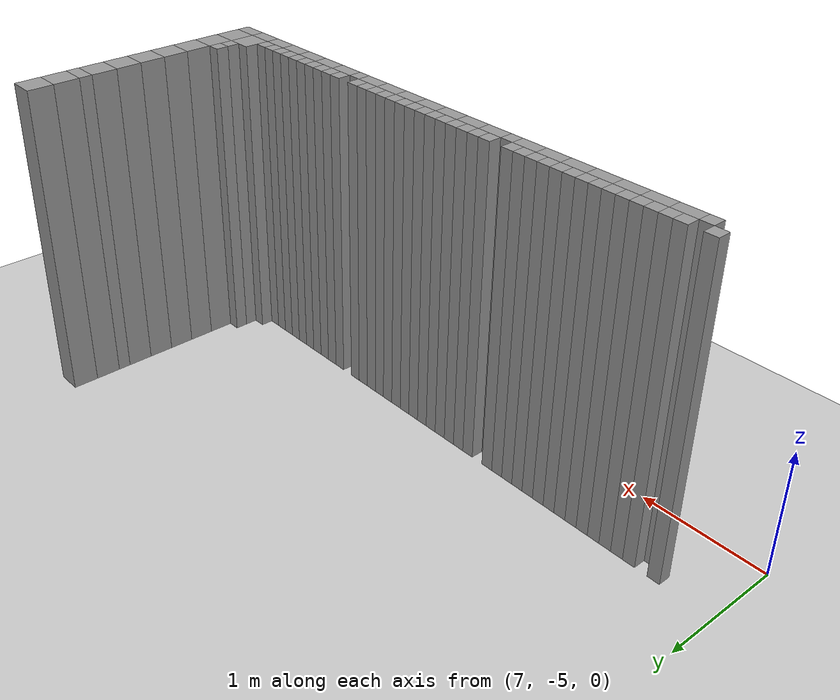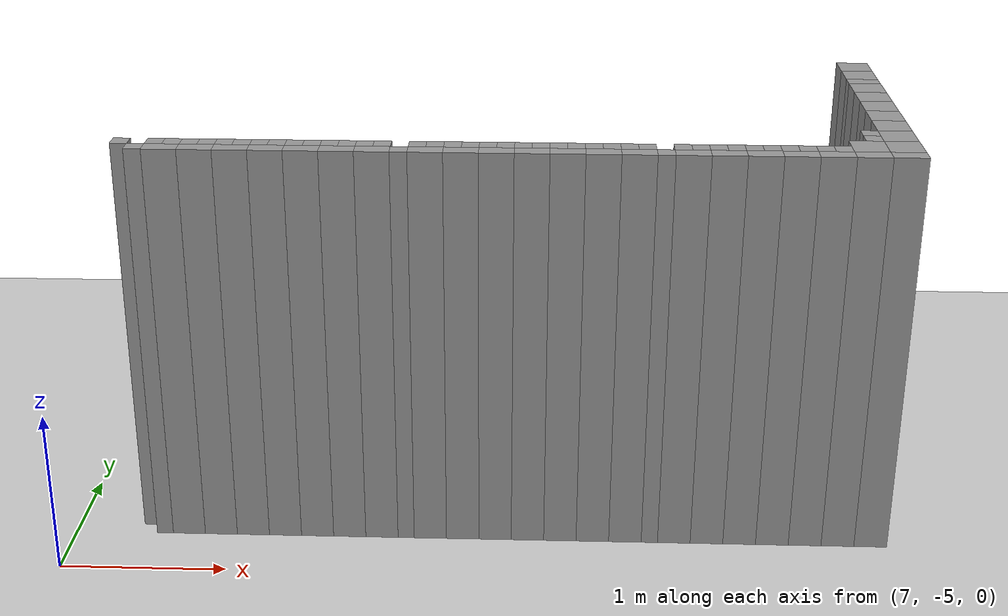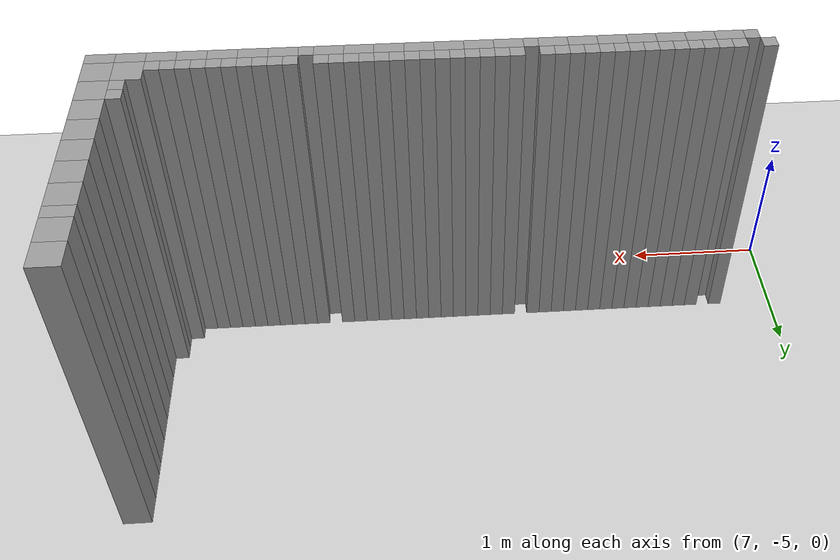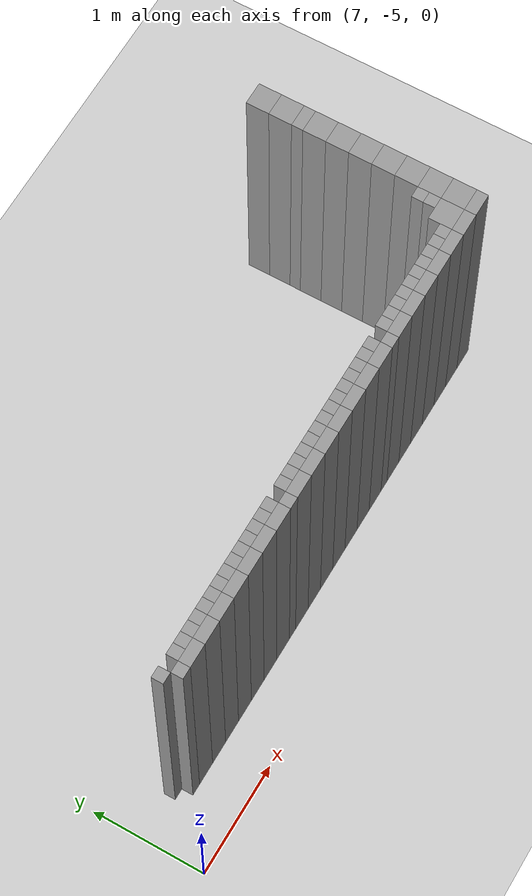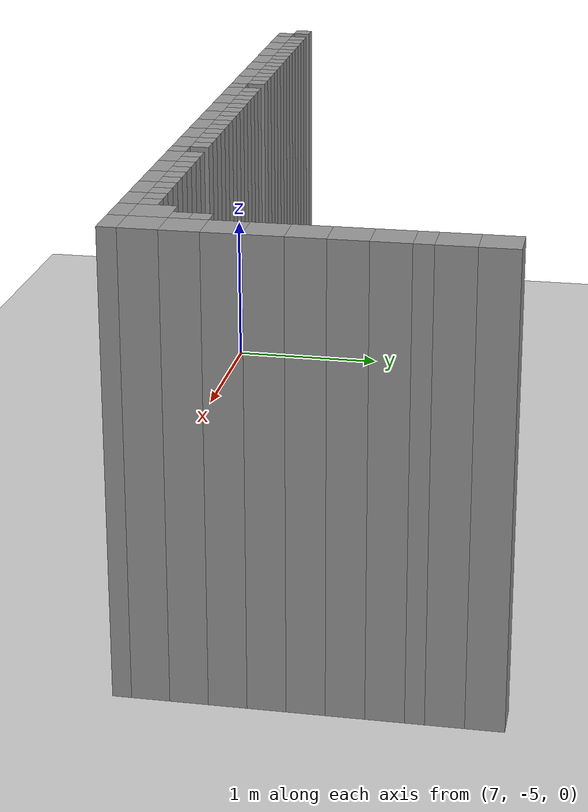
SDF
<sdf version="1.6">
 <world name="default">
  <include><uri>model://sun</uri></include>
  <include><uri>model://ground_plane</uri></include>
  <model name="stage_test">
   <static>1</static>
   <pose>-12 -12 0 0 0 0</pose>
   <link name="Wall_978">
    <pose>19.450000000000003 7.550000000000001 0 0 0 0</pose>
    <collision name="Wall_978_collision">
     <pose>0 0 1.25 0 0 0</pose>
     <geometry><box><size>0.09999999999999787 0.10000000000000053 2.5</size></box></geometry>
    </collision>
    <visual name="Wall_978_visual">
     <pose>0 0 1.25 0 0 0</pose>
     <geometry><box><size>0.09999999999999787 0.10000000000000053 2.5</size></box></geometry>
     <material>
      <script><uri>file://media/materials/scripts/gazebo.material</uri><name>Gazebo/Grey</name></script>
      <ambient>1 1 1 1</ambient>
     </material>
    </visual>
   </link>
   <link name="Wall_987">
    <pose>19.650000000000002 7.550000000000001 0 0 0 0</pose>
    <collision name="Wall_987_collision">
     <pose>0 0 1.25 0 0 0</pose>
     <geometry><box><size>0.10000000000000142 0.10000000000000053 2.5</size></box></geometry>
    </collision>
    <visual name="Wall_987_visual">
     <pose>0 0 1.25 0 0 0</pose>
     <geometry><box><size>0.10000000000000142 0.10000000000000053 2.5</size></box></geometry>
     <material>
      <script><uri>file://media/materials/scripts/gazebo.material</uri><name>Gazebo/Grey</name></script>
      <ambient>1 1 1 1</ambient>
     </material>
    </visual>
   </link>
   <link name="Wall_988">
    <pose>19.75 7.550000000000001 0 0 0 0</pose>
    <collision name="Wall_988_collision">
     <pose>0 0 1.25 0 0 0</pose>
     <geometry><box><size>0.09999999999999787 0.10000000000000053 2.5</size></box></geometry>
    </collision>
    <visual name="Wall_988_visual">
     <pose>0 0 1.25 0 0 0</pose>
     <geometry><box><size>0.09999999999999787 0.10000000000000053 2.5</size></box></geometry>
     <material>
      <script><uri>file://media/materials/scripts/gazebo.material</uri><name>Gazebo/Grey</name></script>
      <ambient>1 1 1 1</ambient>
     </material>
    </visual>
   </link>
   <link name="Wall_989">
    <pose>19.85 7.550000000000001 0 0 0 0</pose>
    <collision name="Wall_989_collision">
     <pose>0 0 1.25 0 0 0</pose>
     <geometry><box><size>0.10000000000000142 0.10000000000000053 2.5</size></box></geometry>
    </collision>
    <visual name="Wall_989_visual">
     <pose>0 0 1.25 0 0 0</pose>
     <geometry><box><size>0.10000000000000142 0.10000000000000053 2.5</size></box></geometry>
     <material>
      <script><uri>file://media/materials/scripts/gazebo.material</uri><name>Gazebo/Grey</name></script>
      <ambient>1 1 1 1</ambient>
     </material>
    </visual>
   </link>
   <link name="Wall_990">
    <pose>19.950000000000003 7.550000000000001 0 0 0 0</pose>
    <collision name="Wall_990_collision">
     <pose>0 0 1.25 0 0 0</pose>
     <geometry><box><size>0.09999999999999787 0.10000000000000053 2.5</size></box></geometry>
    </collision>
    <visual name="Wall_990_visual">
     <pose>0 0 1.25 0 0 0</pose>
     <geometry><box><size>0.09999999999999787 0.10000000000000053 2.5</size></box></geometry>
     <material>
      <script><uri>file://media/materials/scripts/gazebo.material</uri><name>Gazebo/Grey</name></script>
      <ambient>1 1 1 1</ambient>
     </material>
    </visual>
   </link>
   <link name="Wall_991">
    <pose>20.05 7.550000000000001 0 0 0 0</pose>
    <collision name="Wall_991_collision">
     <pose>0 0 1.25 0 0 0</pose>
     <geometry><box><size>0.10000000000000142 0.10000000000000053 2.5</size></box></geometry>
    </collision>
    <visual name="Wall_991_visual">
     <pose>0 0 1.25 0 0 0</pose>
     <geometry><box><size>0.10000000000000142 0.10000000000000053 2.5</size></box></geometry>
     <material>
      <script><uri>file://media/materials/scripts/gazebo.material</uri><name>Gazebo/Grey</name></script>
      <ambient>1 1 1 1</ambient>
     </material>
    </visual>
   </link>
   <link name="Wall_992">
    <pose>20.150000000000002 7.550000000000001 0 0 0 0</pose>
    <collision name="Wall_992_collision">
     <pose>0 0 1.25 0 0 0</pose>
     <geometry><box><size>0.10000000000000142 0.10000000000000053 2.5</size></box></geometry>
    </collision>
    <visual name="Wall_992_visual">
     <pose>0 0 1.25 0 0 0</pose>
     <geometry><box><size>0.10000000000000142 0.10000000000000053 2.5</size></box></geometry>
     <material>
      <script><uri>file://media/materials/scripts/gazebo.material</uri><name>Gazebo/Grey</name></script>
      <ambient>1 1 1 1</ambient>
     </material>
    </visual>
   </link>
   <link name="Wall_993">
    <pose>20.25 7.550000000000001 0 0 0 0</pose>
    <collision name="Wall_993_collision">
     <pose>0 0 1.25 0 0 0</pose>
     <geometry><box><size>0.09999999999999787 0.10000000000000053 2.5</size></box></geometry>
    </collision>
    <visual name="Wall_993_visual">
     <pose>0 0 1.25 0 0 0</pose>
     <geometry><box><size>0.09999999999999787 0.10000000000000053 2.5</size></box></geometry>
     <material>
      <script><uri>file://media/materials/scripts/gazebo.material</uri><name>Gazebo/Grey</name></script>
      <ambient>1 1 1 1</ambient>
     </material>
    </visual>
   </link>
   <link name="Wall_994">
    <pose>20.35 7.550000000000001 0 0 0 0</pose>
    <collision name="Wall_994_collision">
     <pose>0 0 1.25 0 0 0</pose>
     <geometry><box><size>0.10000000000000142 0.10000000000000053 2.5</size></box></geometry>
    </collision>
    <visual name="Wall_994_visual">
     <pose>0 0 1.25 0 0 0</pose>
     <geometry><box><size>0.10000000000000142 0.10000000000000053 2.5</size></box></geometry>
     <material>
      <script><uri>file://media/materials/scripts/gazebo.material</uri><name>Gazebo/Grey</name></script>
      <ambient>1 1 1 1</ambient>
     </material>
    </visual>
   </link>
   <link name="Wall_995">
    <pose>20.450000000000003 7.550000000000001 0 0 0 0</pose>
    <collision name="Wall_995_collision">
     <pose>0 0 1.25 0 0 0</pose>
     <geometry><box><size>0.09999999999999787 0.10000000000000053 2.5</size></box></geometry>
    </collision>
    <visual name="Wall_995_visual">
     <pose>0 0 1.25 0 0 0</pose>
     <geometry><box><size>0.09999999999999787 0.10000000000000053 2.5</size></box></geometry>
     <material>
      <script><uri>file://media/materials/scripts/gazebo.material</uri><name>Gazebo/Grey</name></script>
      <ambient>1 1 1 1</ambient>
     </material>
    </visual>
   </link>
   <link name="Wall_996">
    <pose>20.55 7.550000000000001 0 0 0 0</pose>
    <collision name="Wall_996_collision">
     <pose>0 0 1.25 0 0 0</pose>
     <geometry><box><size>0.10000000000000142 0.10000000000000053 2.5</size></box></geometry>
    </collision>
    <visual name="Wall_996_visual">
     <pose>0 0 1.25 0 0 0</pose>
     <geometry><box><size>0.10000000000000142 0.10000000000000053 2.5</size></box></geometry>
     <material>
      <script><uri>file://media/materials/scripts/gazebo.material</uri><name>Gazebo/Grey</name></script>
      <ambient>1 1 1 1</ambient>
     </material>
    </visual>
   </link>
   <link name="Wall_997">
    <pose>20.650000000000002 7.550000000000001 0 0 0 0</pose>
    <collision name="Wall_997_collision">
     <pose>0 0 1.25 0 0 0</pose>
     <geometry><box><size>0.10000000000000142 0.10000000000000053 2.5</size></box></geometry>
    </collision>
    <visual name="Wall_997_visual">
     <pose>0 0 1.25 0 0 0</pose>
     <geometry><box><size>0.10000000000000142 0.10000000000000053 2.5</size></box></geometry>
     <material>
      <script><uri>file://media/materials/scripts/gazebo.material</uri><name>Gazebo/Grey</name></script>
      <ambient>1 1 1 1</ambient>
     </material>
    </visual>
   </link>
   <link name="Wall_998">
    <pose>20.75 7.550000000000001 0 0 0 0</pose>
    <collision name="Wall_998_collision">
     <pose>0 0 1.25 0 0 0</pose>
     <geometry><box><size>0.09999999999999787 0.10000000000000053 2.5</size></box></geometry>
    </collision>
    <visual name="Wall_998_visual">
     <pose>0 0 1.25 0 0 0</pose>
     <geometry><box><size>0.09999999999999787 0.10000000000000053 2.5</size></box></geometry>
     <material>
      <script><uri>file://media/materials/scripts/gazebo.material</uri><name>Gazebo/Grey</name></script>
      <ambient>1 1 1 1</ambient>
     </material>
    </visual>
   </link>
   <link name="Wall_999">
    <pose>20.85 7.550000000000001 0 0 0 0</pose>
    <collision name="Wall_999_collision">
     <pose>0 0 1.25 0 0 0</pose>
     <geometry><box><size>0.10000000000000142 0.10000000000000053 2.5</size></box></geometry>
    </collision>
    <visual name="Wall_999_visual">
     <pose>0 0 1.25 0 0 0</pose>
     <geometry><box><size>0.10000000000000142 0.10000000000000053 2.5</size></box></geometry>
     <material>
      <script><uri>file://media/materials/scripts/gazebo.material</uri><name>Gazebo/Grey</name></script>
      <ambient>1 1 1 1</ambient>
     </material>
    </visual>
   </link>
   <link name="Wall_1000">
    <pose>20.950000000000003 7.550000000000001 0 0 0 0</pose>
    <collision name="Wall_1000_collision">
     <pose>0 0 1.25 0 0 0</pose>
     <geometry><box><size>0.09999999999999787 0.10000000000000053 2.5</size></box></geometry>
    </collision>
    <visual name="Wall_1000_visual">
     <pose>0 0 1.25 0 0 0</pose>
     <geometry><box><size>0.09999999999999787 0.10000000000000053 2.5</size></box></geometry>
     <material>
      <script><uri>file://media/materials/scripts/gazebo.material</uri><name>Gazebo/Grey</name></script>
      <ambient>1 1 1 1</ambient>
     </material>
    </visual>
   </link>
   <link name="Wall_1001">
    <pose>19.55 7.45 0 0 0 0</pose>
    <collision name="Wall_1001_collision">
     <pose>0 0 1.25 0 0 0</pose>
     <geometry><box><size>0.10000000000000142 0.09999999999999964 2.5</size></box></geometry>
    </collision>
    <visual name="Wall_1001_visual">
     <pose>0 0 1.25 0 0 0</pose>
     <geometry><box><size>0.10000000000000142 0.09999999999999964 2.5</size></box></geometry>
     <material>
      <script><uri>file://media/materials/scripts/gazebo.material</uri><name>Gazebo/Grey</name></script>
      <ambient>1 1 1 1</ambient>
     </material>
    </visual>
   </link>
   <link name="Wall_1002">
    <pose>19.700000000000003 7.45 0 0 0 0</pose>
    <collision name="Wall_1002_collision">
     <pose>0 0 1.25 0 0 0</pose>
     <geometry><box><size>0.1999999999999993 0.09999999999999964 2.5</size></box></geometry>
    </collision>
    <visual name="Wall_1002_visual">
     <pose>0 0 1.25 0 0 0</pose>
     <geometry><box><size>0.1999999999999993 0.09999999999999964 2.5</size></box></geometry>
     <material>
      <script><uri>file://media/materials/scripts/gazebo.material</uri><name>Gazebo/Grey</name></script>
      <ambient>1 1 1 1</ambient>
     </material>
    </visual>
   </link>
   <link name="Wall_1003">
    <pose>19.9 7.45 0 0 0 0</pose>
    <collision name="Wall_1003_collision">
     <pose>0 0 1.25 0 0 0</pose>
     <geometry><box><size>0.1999999999999993 0.09999999999999964 2.5</size></box></geometry>
    </collision>
    <visual name="Wall_1003_visual">
     <pose>0 0 1.25 0 0 0</pose>
     <geometry><box><size>0.1999999999999993 0.09999999999999964 2.5</size></box></geometry>
     <material>
      <script><uri>file://media/materials/scripts/gazebo.material</uri><name>Gazebo/Grey</name></script>
      <ambient>1 1 1 1</ambient>
     </material>
    </visual>
   </link>
   <link name="Wall_1004">
    <pose>20.1 7.45 0 0 0 0</pose>
    <collision name="Wall_1004_collision">
     <pose>0 0 1.25 0 0 0</pose>
     <geometry><box><size>0.20000000000000284 0.09999999999999964 2.5</size></box></geometry>
    </collision>
    <visual name="Wall_1004_visual">
     <pose>0 0 1.25 0 0 0</pose>
     <geometry><box><size>0.20000000000000284 0.09999999999999964 2.5</size></box></geometry>
     <material>
      <script><uri>file://media/materials/scripts/gazebo.material</uri><name>Gazebo/Grey</name></script>
      <ambient>1 1 1 1</ambient>
     </material>
    </visual>
   </link>
   <link name="Wall_1005">
    <pose>20.300000000000004 7.45 0 0 0 0</pose>
    <collision name="Wall_1005_collision">
     <pose>0 0 1.25 0 0 0</pose>
     <geometry><box><size>0.1999999999999993 0.09999999999999964 2.5</size></box></geometry>
    </collision>
    <visual name="Wall_1005_visual">
     <pose>0 0 1.25 0 0 0</pose>
     <geometry><box><size>0.1999999999999993 0.09999999999999964 2.5</size></box></geometry>
     <material>
      <script><uri>file://media/materials/scripts/gazebo.material</uri><name>Gazebo/Grey</name></script>
      <ambient>1 1 1 1</ambient>
     </material>
    </visual>
   </link>
   <link name="Wall_1006">
    <pose>20.5 7.45 0 0 0 0</pose>
    <collision name="Wall_1006_collision">
     <pose>0 0 1.25 0 0 0</pose>
     <geometry><box><size>0.1999999999999993 0.09999999999999964 2.5</size></box></geometry>
    </collision>
    <visual name="Wall_1006_visual">
     <pose>0 0 1.25 0 0 0</pose>
     <geometry><box><size>0.1999999999999993 0.09999999999999964 2.5</size></box></geometry>
     <material>
      <script><uri>file://media/materials/scripts/gazebo.material</uri><name>Gazebo/Grey</name></script>
      <ambient>1 1 1 1</ambient>
     </material>
    </visual>
   </link>
   <link name="Wall_1007">
    <pose>20.700000000000003 7.45 0 0 0 0</pose>
    <collision name="Wall_1007_collision">
     <pose>0 0 1.25 0 0 0</pose>
     <geometry><box><size>0.1999999999999993 0.09999999999999964 2.5</size></box></geometry>
    </collision>
    <visual name="Wall_1007_visual">
     <pose>0 0 1.25 0 0 0</pose>
     <geometry><box><size>0.1999999999999993 0.09999999999999964 2.5</size></box></geometry>
     <material>
      <script><uri>file://media/materials/scripts/gazebo.material</uri><name>Gazebo/Grey</name></script>
      <ambient>1 1 1 1</ambient>
     </material>
    </visual>
   </link>
   <link name="Wall_1008">
    <pose>20.9 7.45 0 0 0 0</pose>
    <collision name="Wall_1008_collision">
     <pose>0 0 1.25 0 0 0</pose>
     <geometry><box><size>0.1999999999999993 0.09999999999999964 2.5</size></box></geometry>
    </collision>
    <visual name="Wall_1008_visual">
     <pose>0 0 1.25 0 0 0</pose>
     <geometry><box><size>0.1999999999999993 0.09999999999999964 2.5</size></box></geometry>
     <material>
      <script><uri>file://media/materials/scripts/gazebo.material</uri><name>Gazebo/Grey</name></script>
      <ambient>1 1 1 1</ambient>
     </material>
    </visual>
   </link>
   <link name="Wall_1023">
    <pose>23.9 9.3 0 0 0 0</pose>
    <collision name="Wall_1023_collision">
     <pose>0 0 1.25 0 0 0</pose>
     <geometry><box><size>0.1999999999999993 0.1999999999999993 2.5</size></box></geometry>
    </collision>
    <visual name="Wall_1023_visual">
     <pose>0 0 1.25 0 0 0</pose>
     <geometry><box><size>0.1999999999999993 0.1999999999999993 2.5</size></box></geometry>
     <material>
      <script><uri>file://media/materials/scripts/gazebo.material</uri><name>Gazebo/Grey</name></script>
      <ambient>1 1 1 1</ambient>
     </material>
    </visual>
   </link>
   <link name="Wall_1024">
    <pose>23.9 9.100000000000001 0 0 0 0</pose>
    <collision name="Wall_1024_collision">
     <pose>0 0 1.25 0 0 0</pose>
     <geometry><box><size>0.1999999999999993 0.20000000000000107 2.5</size></box></geometry>
    </collision>
    <visual name="Wall_1024_visual">
     <pose>0 0 1.25 0 0 0</pose>
     <geometry><box><size>0.1999999999999993 0.20000000000000107 2.5</size></box></geometry>
     <material>
      <script><uri>file://media/materials/scripts/gazebo.material</uri><name>Gazebo/Grey</name></script>
      <ambient>1 1 1 1</ambient>
     </material>
    </visual>
   </link>
   <link name="Wall_1025">
    <pose>21.150000000000002 7.550000000000001 0 0 0 0</pose>
    <collision name="Wall_1025_collision">
     <pose>0 0 1.25 0 0 0</pose>
     <geometry><box><size>0.10000000000000142 0.10000000000000053 2.5</size></box></geometry>
    </collision>
    <visual name="Wall_1025_visual">
     <pose>0 0 1.25 0 0 0</pose>
     <geometry><box><size>0.10000000000000142 0.10000000000000053 2.5</size></box></geometry>
     <material>
      <script><uri>file://media/materials/scripts/gazebo.material</uri><name>Gazebo/Grey</name></script>
      <ambient>1 1 1 1</ambient>
     </material>
    </visual>
   </link>
   <link name="Wall_1026">
    <pose>21.25 7.550000000000001 0 0 0 0</pose>
    <collision name="Wall_1026_collision">
     <pose>0 0 1.25 0 0 0</pose>
     <geometry><box><size>0.09999999999999787 0.10000000000000053 2.5</size></box></geometry>
    </collision>
    <visual name="Wall_1026_visual">
     <pose>0 0 1.25 0 0 0</pose>
     <geometry><box><size>0.09999999999999787 0.10000000000000053 2.5</size></box></geometry>
     <material>
      <script><uri>file://media/materials/scripts/gazebo.material</uri><name>Gazebo/Grey</name></script>
      <ambient>1 1 1 1</ambient>
     </material>
    </visual>
   </link>
   <link name="Wall_1027">
    <pose>21.35 7.550000000000001 0 0 0 0</pose>
    <collision name="Wall_1027_collision">
     <pose>0 0 1.25 0 0 0</pose>
     <geometry><box><size>0.10000000000000142 0.10000000000000053 2.5</size></box></geometry>
    </collision>
    <visual name="Wall_1027_visual">
     <pose>0 0 1.25 0 0 0</pose>
     <geometry><box><size>0.10000000000000142 0.10000000000000053 2.5</size></box></geometry>
     <material>
      <script><uri>file://media/materials/scripts/gazebo.material</uri><name>Gazebo/Grey</name></script>
      <ambient>1 1 1 1</ambient>
     </material>
    </visual>
   </link>
   <link name="Wall_1028">
    <pose>21.450000000000003 7.550000000000001 0 0 0 0</pose>
    <collision name="Wall_1028_collision">
     <pose>0 0 1.25 0 0 0</pose>
     <geometry><box><size>0.09999999999999787 0.10000000000000053 2.5</size></box></geometry>
    </collision>
    <visual name="Wall_1028_visual">
     <pose>0 0 1.25 0 0 0</pose>
     <geometry><box><size>0.09999999999999787 0.10000000000000053 2.5</size></box></geometry>
     <material>
      <script><uri>file://media/materials/scripts/gazebo.material</uri><name>Gazebo/Grey</name></script>
      <ambient>1 1 1 1</ambient>
     </material>
    </visual>
   </link>
   <link name="Wall_1029">
    <pose>21.55 7.550000000000001 0 0 0 0</pose>
    <collision name="Wall_1029_collision">
     <pose>0 0 1.25 0 0 0</pose>
     <geometry><box><size>0.10000000000000142 0.10000000000000053 2.5</size></box></geometry>
    </collision>
    <visual name="Wall_1029_visual">
     <pose>0 0 1.25 0 0 0</pose>
     <geometry><box><size>0.10000000000000142 0.10000000000000053 2.5</size></box></geometry>
     <material>
      <script><uri>file://media/materials/scripts/gazebo.material</uri><name>Gazebo/Grey</name></script>
      <ambient>1 1 1 1</ambient>
     </material>
    </visual>
   </link>
   <link name="Wall_1030">
    <pose>21.65 7.550000000000001 0 0 0 0</pose>
    <collision name="Wall_1030_collision">
     <pose>0 0 1.25 0 0 0</pose>
     <geometry><box><size>0.10000000000000142 0.10000000000000053 2.5</size></box></geometry>
    </collision>
    <visual name="Wall_1030_visual">
     <pose>0 0 1.25 0 0 0</pose>
     <geometry><box><size>0.10000000000000142 0.10000000000000053 2.5</size></box></geometry>
     <material>
      <script><uri>file://media/materials/scripts/gazebo.material</uri><name>Gazebo/Grey</name></script>
      <ambient>1 1 1 1</ambient>
     </material>
    </visual>
   </link>
   <link name="Wall_1031">
    <pose>21.75 7.550000000000001 0 0 0 0</pose>
    <collision name="Wall_1031_collision">
     <pose>0 0 1.25 0 0 0</pose>
     <geometry><box><size>0.09999999999999787 0.10000000000000053 2.5</size></box></geometry>
    </collision>
    <visual name="Wall_1031_visual">
     <pose>0 0 1.25 0 0 0</pose>
     <geometry><box><size>0.09999999999999787 0.10000000000000053 2.5</size></box></geometry>
     <material>
      <script><uri>file://media/materials/scripts/gazebo.material</uri><name>Gazebo/Grey</name></script>
      <ambient>1 1 1 1</ambient>
     </material>
    </visual>
   </link>
   <link name="Wall_1032">
    <pose>21.85 7.550000000000001 0 0 0 0</pose>
    <collision name="Wall_1032_collision">
     <pose>0 0 1.25 0 0 0</pose>
     <geometry><box><size>0.10000000000000142 0.10000000000000053 2.5</size></box></geometry>
    </collision>
    <visual name="Wall_1032_visual">
     <pose>0 0 1.25 0 0 0</pose>
     <geometry><box><size>0.10000000000000142 0.10000000000000053 2.5</size></box></geometry>
     <material>
      <script><uri>file://media/materials/scripts/gazebo.material</uri><name>Gazebo/Grey</name></script>
      <ambient>1 1 1 1</ambient>
     </material>
    </visual>
   </link>
   <link name="Wall_1033">
    <pose>21.950000000000003 7.550000000000001 0 0 0 0</pose>
    <collision name="Wall_1033_collision">
     <pose>0 0 1.25 0 0 0</pose>
     <geometry><box><size>0.09999999999999787 0.10000000000000053 2.5</size></box></geometry>
    </collision>
    <visual name="Wall_1033_visual">
     <pose>0 0 1.25 0 0 0</pose>
     <geometry><box><size>0.09999999999999787 0.10000000000000053 2.5</size></box></geometry>
     <material>
      <script><uri>file://media/materials/scripts/gazebo.material</uri><name>Gazebo/Grey</name></script>
      <ambient>1 1 1 1</ambient>
     </material>
    </visual>
   </link>
   <link name="Wall_1034">
    <pose>22.05 7.550000000000001 0 0 0 0</pose>
    <collision name="Wall_1034_collision">
     <pose>0 0 1.25 0 0 0</pose>
     <geometry><box><size>0.10000000000000142 0.10000000000000053 2.5</size></box></geometry>
    </collision>
    <visual name="Wall_1034_visual">
     <pose>0 0 1.25 0 0 0</pose>
     <geometry><box><size>0.10000000000000142 0.10000000000000053 2.5</size></box></geometry>
     <material>
      <script><uri>file://media/materials/scripts/gazebo.material</uri><name>Gazebo/Grey</name></script>
      <ambient>1 1 1 1</ambient>
     </material>
    </visual>
   </link>
   <link name="Wall_1035">
    <pose>22.15 7.550000000000001 0 0 0 0</pose>
    <collision name="Wall_1035_collision">
     <pose>0 0 1.25 0 0 0</pose>
     <geometry><box><size>0.10000000000000142 0.10000000000000053 2.5</size></box></geometry>
    </collision>
    <visual name="Wall_1035_visual">
     <pose>0 0 1.25 0 0 0</pose>
     <geometry><box><size>0.10000000000000142 0.10000000000000053 2.5</size></box></geometry>
     <material>
      <script><uri>file://media/materials/scripts/gazebo.material</uri><name>Gazebo/Grey</name></script>
      <ambient>1 1 1 1</ambient>
     </material>
    </visual>
   </link>
   <link name="Wall_1036">
    <pose>22.25 7.550000000000001 0 0 0 0</pose>
    <collision name="Wall_1036_collision">
     <pose>0 0 1.25 0 0 0</pose>
     <geometry><box><size>0.09999999999999787 0.10000000000000053 2.5</size></box></geometry>
    </collision>
    <visual name="Wall_1036_visual">
     <pose>0 0 1.25 0 0 0</pose>
     <geometry><box><size>0.09999999999999787 0.10000000000000053 2.5</size></box></geometry>
     <material>
      <script><uri>file://media/materials/scripts/gazebo.material</uri><name>Gazebo/Grey</name></script>
      <ambient>1 1 1 1</ambient>
     </material>
    </visual>
   </link>
   <link name="Wall_1037">
    <pose>22.35 7.550000000000001 0 0 0 0</pose>
    <collision name="Wall_1037_collision">
     <pose>0 0 1.25 0 0 0</pose>
     <geometry><box><size>0.10000000000000142 0.10000000000000053 2.5</size></box></geometry>
    </collision>
    <visual name="Wall_1037_visual">
     <pose>0 0 1.25 0 0 0</pose>
     <geometry><box><size>0.10000000000000142 0.10000000000000053 2.5</size></box></geometry>
     <material>
      <script><uri>file://media/materials/scripts/gazebo.material</uri><name>Gazebo/Grey</name></script>
      <ambient>1 1 1 1</ambient>
     </material>
    </visual>
   </link>
   <link name="Wall_1038">
    <pose>22.450000000000003 7.550000000000001 0 0 0 0</pose>
    <collision name="Wall_1038_collision">
     <pose>0 0 1.25 0 0 0</pose>
     <geometry><box><size>0.09999999999999787 0.10000000000000053 2.5</size></box></geometry>
    </collision>
    <visual name="Wall_1038_visual">
     <pose>0 0 1.25 0 0 0</pose>
     <geometry><box><size>0.09999999999999787 0.10000000000000053 2.5</size></box></geometry>
     <material>
      <script><uri>file://media/materials/scripts/gazebo.material</uri><name>Gazebo/Grey</name></script>
      <ambient>1 1 1 1</ambient>
     </material>
    </visual>
   </link>
   <link name="Wall_1039">
    <pose>21.05 7.45 0 0 0 0</pose>
    <collision name="Wall_1039_collision">
     <pose>0 0 1.25 0 0 0</pose>
     <geometry><box><size>0.10000000000000142 0.09999999999999964 2.5</size></box></geometry>
    </collision>
    <visual name="Wall_1039_visual">
     <pose>0 0 1.25 0 0 0</pose>
     <geometry><box><size>0.10000000000000142 0.09999999999999964 2.5</size></box></geometry>
     <material>
      <script><uri>file://media/materials/scripts/gazebo.material</uri><name>Gazebo/Grey</name></script>
      <ambient>1 1 1 1</ambient>
     </material>
    </visual>
   </link>
   <link name="Wall_1040">
    <pose>21.200000000000003 7.45 0 0 0 0</pose>
    <collision name="Wall_1040_collision">
     <pose>0 0 1.25 0 0 0</pose>
     <geometry><box><size>0.1999999999999993 0.09999999999999964 2.5</size></box></geometry>
    </collision>
    <visual name="Wall_1040_visual">
     <pose>0 0 1.25 0 0 0</pose>
     <geometry><box><size>0.1999999999999993 0.09999999999999964 2.5</size></box></geometry>
     <material>
      <script><uri>file://media/materials/scripts/gazebo.material</uri><name>Gazebo/Grey</name></script>
      <ambient>1 1 1 1</ambient>
     </material>
    </visual>
   </link>
   <link name="Wall_1041">
    <pose>21.4 7.45 0 0 0 0</pose>
    <collision name="Wall_1041_collision">
     <pose>0 0 1.25 0 0 0</pose>
     <geometry><box><size>0.1999999999999993 0.09999999999999964 2.5</size></box></geometry>
    </collision>
    <visual name="Wall_1041_visual">
     <pose>0 0 1.25 0 0 0</pose>
     <geometry><box><size>0.1999999999999993 0.09999999999999964 2.5</size></box></geometry>
     <material>
      <script><uri>file://media/materials/scripts/gazebo.material</uri><name>Gazebo/Grey</name></script>
      <ambient>1 1 1 1</ambient>
     </material>
    </visual>
   </link>
   <link name="Wall_1042">
    <pose>21.6 7.45 0 0 0 0</pose>
    <collision name="Wall_1042_collision">
     <pose>0 0 1.25 0 0 0</pose>
     <geometry><box><size>0.20000000000000284 0.09999999999999964 2.5</size></box></geometry>
    </collision>
    <visual name="Wall_1042_visual">
     <pose>0 0 1.25 0 0 0</pose>
     <geometry><box><size>0.20000000000000284 0.09999999999999964 2.5</size></box></geometry>
     <material>
      <script><uri>file://media/materials/scripts/gazebo.material</uri><name>Gazebo/Grey</name></script>
      <ambient>1 1 1 1</ambient>
     </material>
    </visual>
   </link>
   <link name="Wall_1043">
    <pose>21.800000000000004 7.45 0 0 0 0</pose>
    <collision name="Wall_1043_collision">
     <pose>0 0 1.25 0 0 0</pose>
     <geometry><box><size>0.1999999999999993 0.09999999999999964 2.5</size></box></geometry>
    </collision>
    <visual name="Wall_1043_visual">
     <pose>0 0 1.25 0 0 0</pose>
     <geometry><box><size>0.1999999999999993 0.09999999999999964 2.5</size></box></geometry>
     <material>
      <script><uri>file://media/materials/scripts/gazebo.material</uri><name>Gazebo/Grey</name></script>
      <ambient>1 1 1 1</ambient>
     </material>
    </visual>
   </link>
   <link name="Wall_1044">
    <pose>22.0 7.45 0 0 0 0</pose>
    <collision name="Wall_1044_collision">
     <pose>0 0 1.25 0 0 0</pose>
     <geometry><box><size>0.1999999999999993 0.09999999999999964 2.5</size></box></geometry>
    </collision>
    <visual name="Wall_1044_visual">
     <pose>0 0 1.25 0 0 0</pose>
     <geometry><box><size>0.1999999999999993 0.09999999999999964 2.5</size></box></geometry>
     <material>
      <script><uri>file://media/materials/scripts/gazebo.material</uri><name>Gazebo/Grey</name></script>
      <ambient>1 1 1 1</ambient>
     </material>
    </visual>
   </link>
   <link name="Wall_1045">
    <pose>22.200000000000003 7.45 0 0 0 0</pose>
    <collision name="Wall_1045_collision">
     <pose>0 0 1.25 0 0 0</pose>
     <geometry><box><size>0.1999999999999993 0.09999999999999964 2.5</size></box></geometry>
    </collision>
    <visual name="Wall_1045_visual">
     <pose>0 0 1.25 0 0 0</pose>
     <geometry><box><size>0.1999999999999993 0.09999999999999964 2.5</size></box></geometry>
     <material>
      <script><uri>file://media/materials/scripts/gazebo.material</uri><name>Gazebo/Grey</name></script>
      <ambient>1 1 1 1</ambient>
     </material>
    </visual>
   </link>
   <link name="Wall_1046">
    <pose>22.4 7.45 0 0 0 0</pose>
    <collision name="Wall_1046_collision">
     <pose>0 0 1.25 0 0 0</pose>
     <geometry><box><size>0.1999999999999993 0.09999999999999964 2.5</size></box></geometry>
    </collision>
    <visual name="Wall_1046_visual">
     <pose>0 0 1.25 0 0 0</pose>
     <geometry><box><size>0.1999999999999993 0.09999999999999964 2.5</size></box></geometry>
     <material>
      <script><uri>file://media/materials/scripts/gazebo.material</uri><name>Gazebo/Grey</name></script>
      <ambient>1 1 1 1</ambient>
     </material>
    </visual>
   </link>
   <link name="Wall_1047">
    <pose>22.65 7.550000000000001 0 0 0 0</pose>
    <collision name="Wall_1047_collision">
     <pose>0 0 1.25 0 0 0</pose>
     <geometry><box><size>0.10000000000000142 0.10000000000000053 2.5</size></box></geometry>
    </collision>
    <visual name="Wall_1047_visual">
     <pose>0 0 1.25 0 0 0</pose>
     <geometry><box><size>0.10000000000000142 0.10000000000000053 2.5</size></box></geometry>
     <material>
      <script><uri>file://media/materials/scripts/gazebo.material</uri><name>Gazebo/Grey</name></script>
      <ambient>1 1 1 1</ambient>
     </material>
    </visual>
   </link>
   <link name="Wall_1048">
    <pose>22.75 7.550000000000001 0 0 0 0</pose>
    <collision name="Wall_1048_collision">
     <pose>0 0 1.25 0 0 0</pose>
     <geometry><box><size>0.09999999999999787 0.10000000000000053 2.5</size></box></geometry>
    </collision>
    <visual name="Wall_1048_visual">
     <pose>0 0 1.25 0 0 0</pose>
     <geometry><box><size>0.09999999999999787 0.10000000000000053 2.5</size></box></geometry>
     <material>
      <script><uri>file://media/materials/scripts/gazebo.material</uri><name>Gazebo/Grey</name></script>
      <ambient>1 1 1 1</ambient>
     </material>
    </visual>
   </link>
   <link name="Wall_1049">
    <pose>22.85 7.550000000000001 0 0 0 0</pose>
    <collision name="Wall_1049_collision">
     <pose>0 0 1.25 0 0 0</pose>
     <geometry><box><size>0.10000000000000142 0.10000000000000053 2.5</size></box></geometry>
    </collision>
    <visual name="Wall_1049_visual">
     <pose>0 0 1.25 0 0 0</pose>
     <geometry><box><size>0.10000000000000142 0.10000000000000053 2.5</size></box></geometry>
     <material>
      <script><uri>file://media/materials/scripts/gazebo.material</uri><name>Gazebo/Grey</name></script>
      <ambient>1 1 1 1</ambient>
     </material>
    </visual>
   </link>
   <link name="Wall_1050">
    <pose>22.950000000000003 7.550000000000001 0 0 0 0</pose>
    <collision name="Wall_1050_collision">
     <pose>0 0 1.25 0 0 0</pose>
     <geometry><box><size>0.09999999999999787 0.10000000000000053 2.5</size></box></geometry>
    </collision>
    <visual name="Wall_1050_visual">
     <pose>0 0 1.25 0 0 0</pose>
     <geometry><box><size>0.09999999999999787 0.10000000000000053 2.5</size></box></geometry>
     <material>
      <script><uri>file://media/materials/scripts/gazebo.material</uri><name>Gazebo/Grey</name></script>
      <ambient>1 1 1 1</ambient>
     </material>
    </visual>
   </link>
   <link name="Wall_1051">
    <pose>23.05 7.550000000000001 0 0 0 0</pose>
    <collision name="Wall_1051_collision">
     <pose>0 0 1.25 0 0 0</pose>
     <geometry><box><size>0.10000000000000142 0.10000000000000053 2.5</size></box></geometry>
    </collision>
    <visual name="Wall_1051_visual">
     <pose>0 0 1.25 0 0 0</pose>
     <geometry><box><size>0.10000000000000142 0.10000000000000053 2.5</size></box></geometry>
     <material>
      <script><uri>file://media/materials/scripts/gazebo.material</uri><name>Gazebo/Grey</name></script>
      <ambient>1 1 1 1</ambient>
     </material>
    </visual>
   </link>
   <link name="Wall_1052">
    <pose>23.15 7.550000000000001 0 0 0 0</pose>
    <collision name="Wall_1052_collision">
     <pose>0 0 1.25 0 0 0</pose>
     <geometry><box><size>0.10000000000000142 0.10000000000000053 2.5</size></box></geometry>
    </collision>
    <visual name="Wall_1052_visual">
     <pose>0 0 1.25 0 0 0</pose>
     <geometry><box><size>0.10000000000000142 0.10000000000000053 2.5</size></box></geometry>
     <material>
      <script><uri>file://media/materials/scripts/gazebo.material</uri><name>Gazebo/Grey</name></script>
      <ambient>1 1 1 1</ambient>
     </material>
    </visual>
   </link>
   <link name="Wall_1053">
    <pose>23.9 8.95 0 0 0 0</pose>
    <collision name="Wall_1053_collision">
     <pose>0 0 1.25 0 0 0</pose>
     <geometry><box><size>0.1999999999999993 0.09999999999999964 2.5</size></box></geometry>
    </collision>
    <visual name="Wall_1053_visual">
     <pose>0 0 1.25 0 0 0</pose>
     <geometry><box><size>0.1999999999999993 0.09999999999999964 2.5</size></box></geometry>
     <material>
      <script><uri>file://media/materials/scripts/gazebo.material</uri><name>Gazebo/Grey</name></script>
      <ambient>1 1 1 1</ambient>
     </material>
    </visual>
   </link>
   <link name="Wall_1054">
    <pose>23.9 8.8 0 0 0 0</pose>
    <collision name="Wall_1054_collision">
     <pose>0 0 1.25 0 0 0</pose>
     <geometry><box><size>0.1999999999999993 0.1999999999999993 2.5</size></box></geometry>
    </collision>
    <visual name="Wall_1054_visual">
     <pose>0 0 1.25 0 0 0</pose>
     <geometry><box><size>0.1999999999999993 0.1999999999999993 2.5</size></box></geometry>
     <material>
      <script><uri>file://media/materials/scripts/gazebo.material</uri><name>Gazebo/Grey</name></script>
      <ambient>1 1 1 1</ambient>
     </material>
    </visual>
   </link>
   <link name="Wall_1055">
    <pose>23.9 8.600000000000001 0 0 0 0</pose>
    <collision name="Wall_1055_collision">
     <pose>0 0 1.25 0 0 0</pose>
     <geometry><box><size>0.1999999999999993 0.20000000000000107 2.5</size></box></geometry>
    </collision>
    <visual name="Wall_1055_visual">
     <pose>0 0 1.25 0 0 0</pose>
     <geometry><box><size>0.1999999999999993 0.20000000000000107 2.5</size></box></geometry>
     <material>
      <script><uri>file://media/materials/scripts/gazebo.material</uri><name>Gazebo/Grey</name></script>
      <ambient>1 1 1 1</ambient>
     </material>
    </visual>
   </link>
   <link name="Wall_1056">
    <pose>23.9 8.4 0 0 0 0</pose>
    <collision name="Wall_1056_collision">
     <pose>0 0 1.25 0 0 0</pose>
     <geometry><box><size>0.1999999999999993 0.1999999999999993 2.5</size></box></geometry>
    </collision>
    <visual name="Wall_1056_visual">
     <pose>0 0 1.25 0 0 0</pose>
     <geometry><box><size>0.1999999999999993 0.1999999999999993 2.5</size></box></geometry>
     <material>
      <script><uri>file://media/materials/scripts/gazebo.material</uri><name>Gazebo/Grey</name></script>
      <ambient>1 1 1 1</ambient>
     </material>
    </visual>
   </link>
   <link name="Wall_1057">
    <pose>23.25 7.550000000000001 0 0 0 0</pose>
    <collision name="Wall_1057_collision">
     <pose>0 0 1.25 0 0 0</pose>
     <geometry><box><size>0.09999999999999787 0.10000000000000053 2.5</size></box></geometry>
    </collision>
    <visual name="Wall_1057_visual">
     <pose>0 0 1.25 0 0 0</pose>
     <geometry><box><size>0.09999999999999787 0.10000000000000053 2.5</size></box></geometry>
     <material>
      <script><uri>file://media/materials/scripts/gazebo.material</uri><name>Gazebo/Grey</name></script>
      <ambient>1 1 1 1</ambient>
     </material>
    </visual>
   </link>
   <link name="Wall_1058">
    <pose>23.35 7.550000000000001 0 0 0 0</pose>
    <collision name="Wall_1058_collision">
     <pose>0 0 1.25 0 0 0</pose>
     <geometry><box><size>0.10000000000000142 0.10000000000000053 2.5</size></box></geometry>
    </collision>
    <visual name="Wall_1058_visual">
     <pose>0 0 1.25 0 0 0</pose>
     <geometry><box><size>0.10000000000000142 0.10000000000000053 2.5</size></box></geometry>
     <material>
      <script><uri>file://media/materials/scripts/gazebo.material</uri><name>Gazebo/Grey</name></script>
      <ambient>1 1 1 1</ambient>
     </material>
    </visual>
   </link>
   <link name="Wall_1059">
    <pose>23.450000000000003 7.550000000000001 0 0 0 0</pose>
    <collision name="Wall_1059_collision">
     <pose>0 0 1.25 0 0 0</pose>
     <geometry><box><size>0.09999999999999787 0.10000000000000053 2.5</size></box></geometry>
    </collision>
    <visual name="Wall_1059_visual">
     <pose>0 0 1.25 0 0 0</pose>
     <geometry><box><size>0.09999999999999787 0.10000000000000053 2.5</size></box></geometry>
     <material>
      <script><uri>file://media/materials/scripts/gazebo.material</uri><name>Gazebo/Grey</name></script>
      <ambient>1 1 1 1</ambient>
     </material>
    </visual>
   </link>
   <link name="Wall_1060">
    <pose>23.55 7.550000000000001 0 0 0 0</pose>
    <collision name="Wall_1060_collision">
     <pose>0 0 1.25 0 0 0</pose>
     <geometry><box><size>0.10000000000000142 0.10000000000000053 2.5</size></box></geometry>
    </collision>
    <visual name="Wall_1060_visual">
     <pose>0 0 1.25 0 0 0</pose>
     <geometry><box><size>0.10000000000000142 0.10000000000000053 2.5</size></box></geometry>
     <material>
      <script><uri>file://media/materials/scripts/gazebo.material</uri><name>Gazebo/Grey</name></script>
      <ambient>1 1 1 1</ambient>
     </material>
    </visual>
   </link>
   <link name="Wall_1061">
    <pose>23.9 8.2 0 0 0 0</pose>
    <collision name="Wall_1061_collision">
     <pose>0 0 1.25 0 0 0</pose>
     <geometry><box><size>0.1999999999999993 0.20000000000000107 2.5</size></box></geometry>
    </collision>
    <visual name="Wall_1061_visual">
     <pose>0 0 1.25 0 0 0</pose>
     <geometry><box><size>0.1999999999999993 0.20000000000000107 2.5</size></box></geometry>
     <material>
      <script><uri>file://media/materials/scripts/gazebo.material</uri><name>Gazebo/Grey</name></script>
      <ambient>1 1 1 1</ambient>
     </material>
    </visual>
   </link>
   <link name="Wall_1062">
    <pose>23.9 8.0 0 0 0 0</pose>
    <collision name="Wall_1062_collision">
     <pose>0 0 1.25 0 0 0</pose>
     <geometry><box><size>0.1999999999999993 0.1999999999999993 2.5</size></box></geometry>
    </collision>
    <visual name="Wall_1062_visual">
     <pose>0 0 1.25 0 0 0</pose>
     <geometry><box><size>0.1999999999999993 0.1999999999999993 2.5</size></box></geometry>
     <material>
      <script><uri>file://media/materials/scripts/gazebo.material</uri><name>Gazebo/Grey</name></script>
      <ambient>1 1 1 1</ambient>
     </material>
    </visual>
   </link>
   <link name="Wall_1063">
    <pose>23.75 7.85 0 0 0 0</pose>
    <collision name="Wall_1063_collision">
     <pose>0 0 1.25 0 0 0</pose>
     <geometry><box><size>0.09999999999999787 0.09999999999999964 2.5</size></box></geometry>
    </collision>
    <visual name="Wall_1063_visual">
     <pose>0 0 1.25 0 0 0</pose>
     <geometry><box><size>0.09999999999999787 0.09999999999999964 2.5</size></box></geometry>
     <material>
      <script><uri>file://media/materials/scripts/gazebo.material</uri><name>Gazebo/Grey</name></script>
      <ambient>1 1 1 1</ambient>
     </material>
    </visual>
   </link>
   <link name="Wall_1064">
    <pose>23.75 7.750000000000001 0 0 0 0</pose>
    <collision name="Wall_1064_collision">
     <pose>0 0 1.25 0 0 0</pose>
     <geometry><box><size>0.09999999999999787 0.10000000000000053 2.5</size></box></geometry>
    </collision>
    <visual name="Wall_1064_visual">
     <pose>0 0 1.25 0 0 0</pose>
     <geometry><box><size>0.09999999999999787 0.10000000000000053 2.5</size></box></geometry>
     <material>
      <script><uri>file://media/materials/scripts/gazebo.material</uri><name>Gazebo/Grey</name></script>
      <ambient>1 1 1 1</ambient>
     </material>
    </visual>
   </link>
   <link name="Wall_1065">
    <pose>23.700000000000003 7.6 0 0 0 0</pose>
    <collision name="Wall_1065_collision">
     <pose>0 0 1.25 0 0 0</pose>
     <geometry><box><size>0.1999999999999993 0.20000000000000018 2.5</size></box></geometry>
    </collision>
    <visual name="Wall_1065_visual">
     <pose>0 0 1.25 0 0 0</pose>
     <geometry><box><size>0.1999999999999993 0.20000000000000018 2.5</size></box></geometry>
     <material>
      <script><uri>file://media/materials/scripts/gazebo.material</uri><name>Gazebo/Grey</name></script>
      <ambient>1 1 1 1</ambient>
     </material>
    </visual>
   </link>
   <link name="Wall_1066">
    <pose>23.9 7.800000000000001 0 0 0 0</pose>
    <collision name="Wall_1066_collision">
     <pose>0 0 1.25 0 0 0</pose>
     <geometry><box><size>0.1999999999999993 0.20000000000000018 2.5</size></box></geometry>
    </collision>
    <visual name="Wall_1066_visual">
     <pose>0 0 1.25 0 0 0</pose>
     <geometry><box><size>0.1999999999999993 0.20000000000000018 2.5</size></box></geometry>
     <material>
      <script><uri>file://media/materials/scripts/gazebo.material</uri><name>Gazebo/Grey</name></script>
      <ambient>1 1 1 1</ambient>
     </material>
    </visual>
   </link>
   <link name="Wall_1067">
    <pose>23.9 7.6 0 0 0 0</pose>
    <collision name="Wall_1067_collision">
     <pose>0 0 1.25 0 0 0</pose>
     <geometry><box><size>0.1999999999999993 0.20000000000000018 2.5</size></box></geometry>
    </collision>
    <visual name="Wall_1067_visual">
     <pose>0 0 1.25 0 0 0</pose>
     <geometry><box><size>0.1999999999999993 0.20000000000000018 2.5</size></box></geometry>
     <material>
      <script><uri>file://media/materials/scripts/gazebo.material</uri><name>Gazebo/Grey</name></script>
      <ambient>1 1 1 1</ambient>
     </material>
    </visual>
   </link>
   <link name="Wall_1068">
    <pose>22.55 7.45 0 0 0 0</pose>
    <collision name="Wall_1068_collision">
     <pose>0 0 1.25 0 0 0</pose>
     <geometry><box><size>0.10000000000000142 0.09999999999999964 2.5</size></box></geometry>
    </collision>
    <visual name="Wall_1068_visual">
     <pose>0 0 1.25 0 0 0</pose>
     <geometry><box><size>0.10000000000000142 0.09999999999999964 2.5</size></box></geometry>
     <material>
      <script><uri>file://media/materials/scripts/gazebo.material</uri><name>Gazebo/Grey</name></script>
      <ambient>1 1 1 1</ambient>
     </material>
    </visual>
   </link>
   <link name="Wall_1069">
    <pose>22.700000000000003 7.45 0 0 0 0</pose>
    <collision name="Wall_1069_collision">
     <pose>0 0 1.25 0 0 0</pose>
     <geometry><box><size>0.1999999999999993 0.09999999999999964 2.5</size></box></geometry>
    </collision>
    <visual name="Wall_1069_visual">
     <pose>0 0 1.25 0 0 0</pose>
     <geometry><box><size>0.1999999999999993 0.09999999999999964 2.5</size></box></geometry>
     <material>
      <script><uri>file://media/materials/scripts/gazebo.material</uri><name>Gazebo/Grey</name></script>
      <ambient>1 1 1 1</ambient>
     </material>
    </visual>
   </link>
   <link name="Wall_1070">
    <pose>22.9 7.45 0 0 0 0</pose>
    <collision name="Wall_1070_collision">
     <pose>0 0 1.25 0 0 0</pose>
     <geometry><box><size>0.1999999999999993 0.09999999999999964 2.5</size></box></geometry>
    </collision>
    <visual name="Wall_1070_visual">
     <pose>0 0 1.25 0 0 0</pose>
     <geometry><box><size>0.1999999999999993 0.09999999999999964 2.5</size></box></geometry>
     <material>
      <script><uri>file://media/materials/scripts/gazebo.material</uri><name>Gazebo/Grey</name></script>
      <ambient>1 1 1 1</ambient>
     </material>
    </visual>
   </link>
   <link name="Wall_1071">
    <pose>23.1 7.45 0 0 0 0</pose>
    <collision name="Wall_1071_collision">
     <pose>0 0 1.25 0 0 0</pose>
     <geometry><box><size>0.20000000000000284 0.09999999999999964 2.5</size></box></geometry>
    </collision>
    <visual name="Wall_1071_visual">
     <pose>0 0 1.25 0 0 0</pose>
     <geometry><box><size>0.20000000000000284 0.09999999999999964 2.5</size></box></geometry>
     <material>
      <script><uri>file://media/materials/scripts/gazebo.material</uri><name>Gazebo/Grey</name></script>
      <ambient>1 1 1 1</ambient>
     </material>
    </visual>
   </link>
   <link name="Wall_1072">
    <pose>23.300000000000004 7.45 0 0 0 0</pose>
    <collision name="Wall_1072_collision">
     <pose>0 0 1.25 0 0 0</pose>
     <geometry><box><size>0.1999999999999993 0.09999999999999964 2.5</size></box></geometry>
    </collision>
    <visual name="Wall_1072_visual">
     <pose>0 0 1.25 0 0 0</pose>
     <geometry><box><size>0.1999999999999993 0.09999999999999964 2.5</size></box></geometry>
     <material>
      <script><uri>file://media/materials/scripts/gazebo.material</uri><name>Gazebo/Grey</name></script>
      <ambient>1 1 1 1</ambient>
     </material>
    </visual>
   </link>
   <link name="Wall_1073">
    <pose>23.5 7.45 0 0 0 0</pose>
    <collision name="Wall_1073_collision">
     <pose>0 0 1.25 0 0 0</pose>
     <geometry><box><size>0.1999999999999993 0.09999999999999964 2.5</size></box></geometry>
    </collision>
    <visual name="Wall_1073_visual">
     <pose>0 0 1.25 0 0 0</pose>
     <geometry><box><size>0.1999999999999993 0.09999999999999964 2.5</size></box></geometry>
     <material>
      <script><uri>file://media/materials/scripts/gazebo.material</uri><name>Gazebo/Grey</name></script>
      <ambient>1 1 1 1</ambient>
     </material>
    </visual>
   </link>
   <link name="Wall_1074">
    <pose>23.700000000000003 7.45 0 0 0 0</pose>
    <collision name="Wall_1074_collision">
     <pose>0 0 1.25 0 0 0</pose>
     <geometry><box><size>0.1999999999999993 0.09999999999999964 2.5</size></box></geometry>
    </collision>
    <visual name="Wall_1074_visual">
     <pose>0 0 1.25 0 0 0</pose>
     <geometry><box><size>0.1999999999999993 0.09999999999999964 2.5</size></box></geometry>
     <material>
      <script><uri>file://media/materials/scripts/gazebo.material</uri><name>Gazebo/Grey</name></script>
      <ambient>1 1 1 1</ambient>
     </material>
    </visual>
   </link>
   <link name="Wall_1075">
    <pose>23.9 7.45 0 0 0 0</pose>
    <collision name="Wall_1075_collision">
     <pose>0 0 1.25 0 0 0</pose>
     <geometry><box><size>0.1999999999999993 0.09999999999999964 2.5</size></box></geometry>
    </collision>
    <visual name="Wall_1075_visual">
     <pose>0 0 1.25 0 0 0</pose>
     <geometry><box><size>0.1999999999999993 0.09999999999999964 2.5</size></box></geometry>
     <material>
      <script><uri>file://media/materials/scripts/gazebo.material</uri><name>Gazebo/Grey</name></script>
      <ambient>1 1 1 1</ambient>
     </material>
    </visual>
   </link>
  </model>
 </world>
</sdf>
